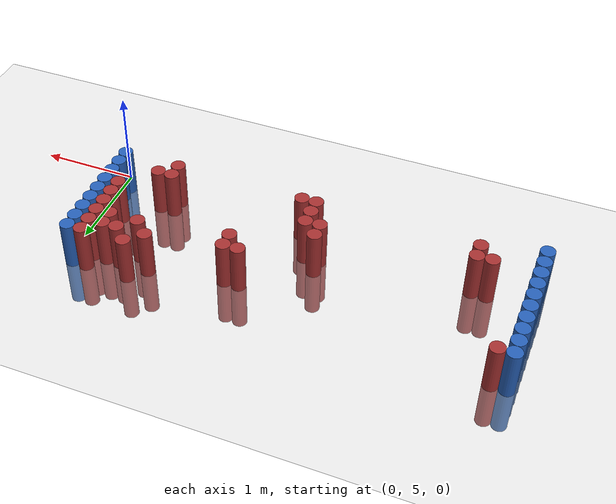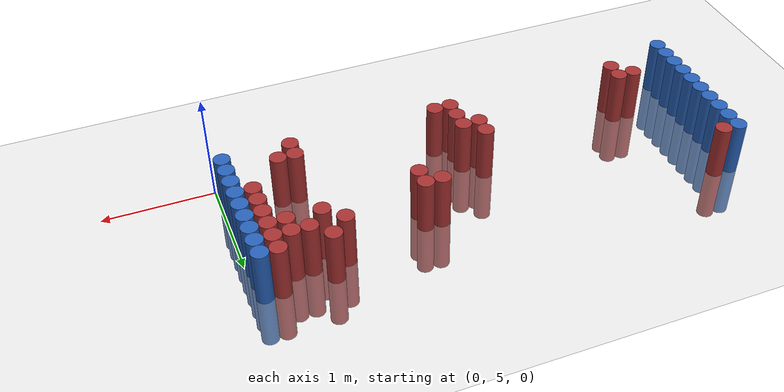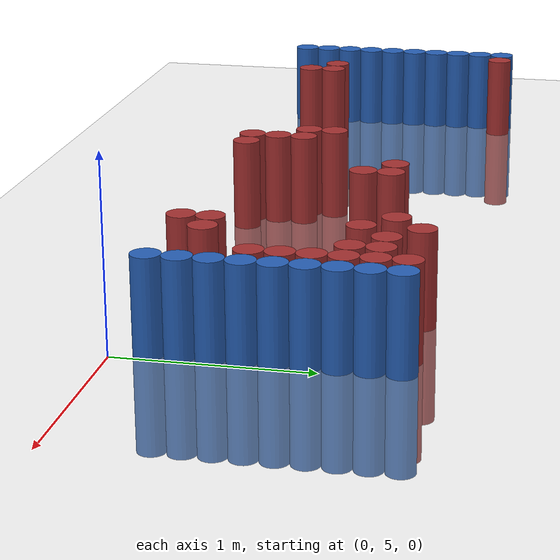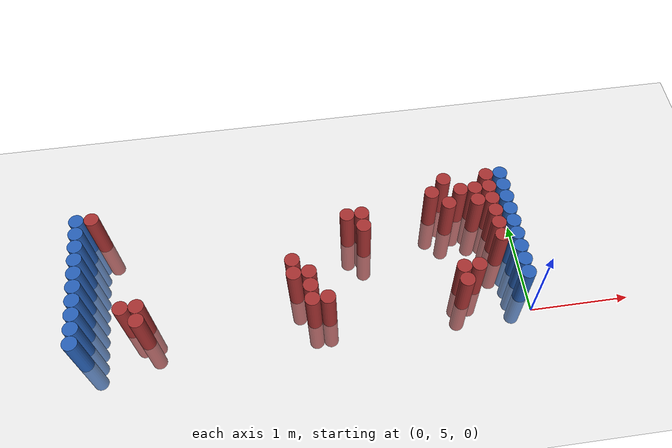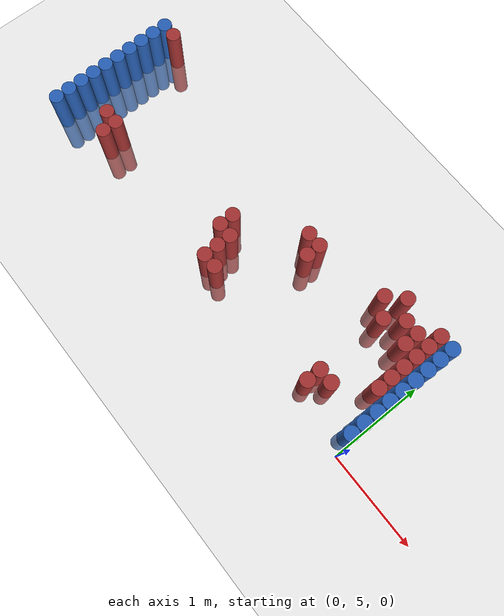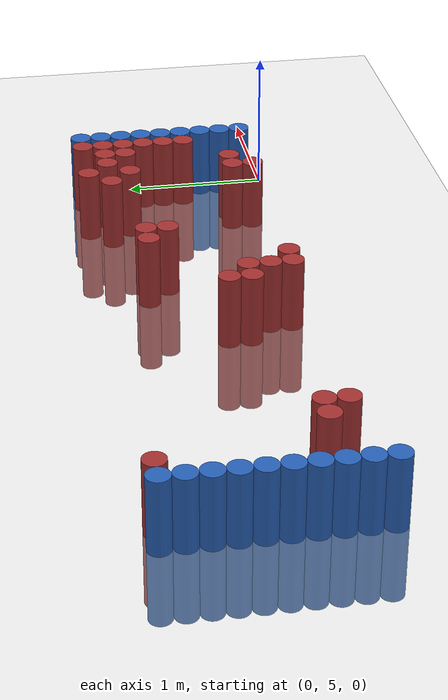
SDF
<sdf version="1.6">
 <world name="default">
  <model name="ground_plane">
   <static>1</static>
   <link name="link">
    <collision name="collision">
     <geometry><plane><normal>0 0 1</normal><size>100 100</size></plane></geometry>
     <surface><friction><ode><mu>100</mu><mu2>50</mu2></ode></friction></surface>
    </collision>
    <visual name="visual">
     <cast_shadows>0</cast_shadows>
     <geometry><plane><normal>0 0 1</normal><size>100 100</size></plane></geometry>
     <material>
      <script><uri>file://media/materials/scripts/gazebo.material</uri><name>Gazebo/Grey</name></script>
     </material>
    </visual>
   </link>
  </model>
  <model name="unit_cylinder_95">
   <static>1</static>
   <pose>-4.425000 5.025000 0.000000 0.000000 0.000000 0.000000</pose>
   <link name="link">
    <inertial>
     <mass>1</mass>
     <inertia><ixx>0.145833</ixx><ixy>0</ixy><ixz>0</ixz><iyy>0.145833</iyy><iyz>0</iyz><izz>0.125</izz></inertia>
    </inertial>
    <collision name="collision">
     <geometry><cylinder><radius>0.075000</radius><length>1</length></cylinder></geometry>
    </collision>
    <visual name="visual">
     <geometry><cylinder><radius>0.075000</radius><length>1</length></cylinder></geometry>
     <material>
      <ambient>0.152000 0.379000 0.720000 1</ambient>
      <diffuse>0.152000 0.379000 0.720000 1</diffuse>
     </material>
     <material>
      <script><name>Gazebo/Grey</name><uri>file://media/materials/scripts/gazebo.material</uri></script>
     </material>
    </visual>
   </link>
  </model>
  <model name="unit_cylinder_96">
   <static>1</static>
   <pose>-4.425000 5.175000 0.000000 0.000000 0.000000 0.000000</pose>
   <link name="link">
    <inertial>
     <mass>1</mass>
     <inertia><ixx>0.145833</ixx><ixy>0</ixy><ixz>0</ixz><iyy>0.145833</iyy><iyz>0</iyz><izz>0.125</izz></inertia>
    </inertial>
    <collision name="collision">
     <geometry><cylinder><radius>0.075000</radius><length>1</length></cylinder></geometry>
    </collision>
    <visual name="visual">
     <geometry><cylinder><radius>0.075000</radius><length>1</length></cylinder></geometry>
     <material>
      <ambient>0.152000 0.379000 0.720000 1</ambient>
      <diffuse>0.152000 0.379000 0.720000 1</diffuse>
     </material>
     <material>
      <script><name>Gazebo/Grey</name><uri>file://media/materials/scripts/gazebo.material</uri></script>
     </material>
    </visual>
   </link>
  </model>
  <model name="unit_cylinder_97">
   <static>1</static>
   <pose>-4.425000 5.325000 0.000000 0.000000 0.000000 0.000000</pose>
   <link name="link">
    <inertial>
     <mass>1</mass>
     <inertia><ixx>0.145833</ixx><ixy>0</ixy><ixz>0</ixz><iyy>0.145833</iyy><iyz>0</iyz><izz>0.125</izz></inertia>
    </inertial>
    <collision name="collision">
     <geometry><cylinder><radius>0.075000</radius><length>1</length></cylinder></geometry>
    </collision>
    <visual name="visual">
     <geometry><cylinder><radius>0.075000</radius><length>1</length></cylinder></geometry>
     <material>
      <ambient>0.152000 0.379000 0.720000 1</ambient>
      <diffuse>0.152000 0.379000 0.720000 1</diffuse>
     </material>
     <material>
      <script><name>Gazebo/Grey</name><uri>file://media/materials/scripts/gazebo.material</uri></script>
     </material>
    </visual>
   </link>
  </model>
  <model name="unit_cylinder_98">
   <static>1</static>
   <pose>-4.425000 5.475000 0.000000 0.000000 0.000000 0.000000</pose>
   <link name="link">
    <inertial>
     <mass>1</mass>
     <inertia><ixx>0.145833</ixx><ixy>0</ixy><ixz>0</ixz><iyy>0.145833</iyy><iyz>0</iyz><izz>0.125</izz></inertia>
    </inertial>
    <collision name="collision">
     <geometry><cylinder><radius>0.075000</radius><length>1</length></cylinder></geometry>
    </collision>
    <visual name="visual">
     <geometry><cylinder><radius>0.075000</radius><length>1</length></cylinder></geometry>
     <material>
      <ambient>0.152000 0.379000 0.720000 1</ambient>
      <diffuse>0.152000 0.379000 0.720000 1</diffuse>
     </material>
     <material>
      <script><name>Gazebo/Grey</name><uri>file://media/materials/scripts/gazebo.material</uri></script>
     </material>
    </visual>
   </link>
  </model>
  <model name="unit_cylinder_99">
   <static>1</static>
   <pose>-4.425000 5.625000 0.000000 0.000000 0.000000 0.000000</pose>
   <link name="link">
    <inertial>
     <mass>1</mass>
     <inertia><ixx>0.145833</ixx><ixy>0</ixy><ixz>0</ixz><iyy>0.145833</iyy><iyz>0</iyz><izz>0.125</izz></inertia>
    </inertial>
    <collision name="collision">
     <geometry><cylinder><radius>0.075000</radius><length>1</length></cylinder></geometry>
    </collision>
    <visual name="visual">
     <geometry><cylinder><radius>0.075000</radius><length>1</length></cylinder></geometry>
     <material>
      <ambient>0.152000 0.379000 0.720000 1</ambient>
      <diffuse>0.152000 0.379000 0.720000 1</diffuse>
     </material>
     <material>
      <script><name>Gazebo/Grey</name><uri>file://media/materials/scripts/gazebo.material</uri></script>
     </material>
    </visual>
   </link>
  </model>
  <model name="unit_cylinder_100">
   <static>1</static>
   <pose>-4.425000 5.775000 0.000000 0.000000 0.000000 0.000000</pose>
   <link name="link">
    <inertial>
     <mass>1</mass>
     <inertia><ixx>0.145833</ixx><ixy>0</ixy><ixz>0</ixz><iyy>0.145833</iyy><iyz>0</iyz><izz>0.125</izz></inertia>
    </inertial>
    <collision name="collision">
     <geometry><cylinder><radius>0.075000</radius><length>1</length></cylinder></geometry>
    </collision>
    <visual name="visual">
     <geometry><cylinder><radius>0.075000</radius><length>1</length></cylinder></geometry>
     <material>
      <ambient>0.152000 0.379000 0.720000 1</ambient>
      <diffuse>0.152000 0.379000 0.720000 1</diffuse>
     </material>
     <material>
      <script><name>Gazebo/Grey</name><uri>file://media/materials/scripts/gazebo.material</uri></script>
     </material>
    </visual>
   </link>
  </model>
  <model name="unit_cylinder_101">
   <static>1</static>
   <pose>-4.425000 5.925000 0.000000 0.000000 0.000000 0.000000</pose>
   <link name="link">
    <inertial>
     <mass>1</mass>
     <inertia><ixx>0.145833</ixx><ixy>0</ixy><ixz>0</ixz><iyy>0.145833</iyy><iyz>0</iyz><izz>0.125</izz></inertia>
    </inertial>
    <collision name="collision">
     <geometry><cylinder><radius>0.075000</radius><length>1</length></cylinder></geometry>
    </collision>
    <visual name="visual">
     <geometry><cylinder><radius>0.075000</radius><length>1</length></cylinder></geometry>
     <material>
      <ambient>0.152000 0.379000 0.720000 1</ambient>
      <diffuse>0.152000 0.379000 0.720000 1</diffuse>
     </material>
     <material>
      <script><name>Gazebo/Grey</name><uri>file://media/materials/scripts/gazebo.material</uri></script>
     </material>
    </visual>
   </link>
  </model>
  <model name="unit_cylinder_102">
   <static>1</static>
   <pose>-4.425000 6.075000 0.000000 0.000000 0.000000 0.000000</pose>
   <link name="link">
    <inertial>
     <mass>1</mass>
     <inertia><ixx>0.145833</ixx><ixy>0</ixy><ixz>0</ixz><iyy>0.145833</iyy><iyz>0</iyz><izz>0.125</izz></inertia>
    </inertial>
    <collision name="collision">
     <geometry><cylinder><radius>0.075000</radius><length>1</length></cylinder></geometry>
    </collision>
    <visual name="visual">
     <geometry><cylinder><radius>0.075000</radius><length>1</length></cylinder></geometry>
     <material>
      <ambient>0.152000 0.379000 0.720000 1</ambient>
      <diffuse>0.152000 0.379000 0.720000 1</diffuse>
     </material>
     <material>
      <script><name>Gazebo/Grey</name><uri>file://media/materials/scripts/gazebo.material</uri></script>
     </material>
    </visual>
   </link>
  </model>
  <model name="unit_cylinder_103">
   <static>1</static>
   <pose>-4.425000 6.225000 0.000000 0.000000 0.000000 0.000000</pose>
   <link name="link">
    <inertial>
     <mass>1</mass>
     <inertia><ixx>0.145833</ixx><ixy>0</ixy><ixz>0</ixz><iyy>0.145833</iyy><iyz>0</iyz><izz>0.125</izz></inertia>
    </inertial>
    <collision name="collision">
     <geometry><cylinder><radius>0.075000</radius><length>1</length></cylinder></geometry>
    </collision>
    <visual name="visual">
     <geometry><cylinder><radius>0.075000</radius><length>1</length></cylinder></geometry>
     <material>
      <ambient>0.152000 0.379000 0.720000 1</ambient>
      <diffuse>0.152000 0.379000 0.720000 1</diffuse>
     </material>
     <material>
      <script><name>Gazebo/Grey</name><uri>file://media/materials/scripts/gazebo.material</uri></script>
     </material>
    </visual>
   </link>
  </model>
  <model name="unit_cylinder_104">
   <static>1</static>
   <pose>-4.425000 6.375000 0.000000 0.000000 0.000000 0.000000</pose>
   <link name="link">
    <inertial>
     <mass>1</mass>
     <inertia><ixx>0.145833</ixx><ixy>0</ixy><ixz>0</ixz><iyy>0.145833</iyy><iyz>0</iyz><izz>0.125</izz></inertia>
    </inertial>
    <collision name="collision">
     <geometry><cylinder><radius>0.075000</radius><length>1</length></cylinder></geometry>
    </collision>
    <visual name="visual">
     <geometry><cylinder><radius>0.075000</radius><length>1</length></cylinder></geometry>
     <material>
      <ambient>0.152000 0.379000 0.720000 1</ambient>
      <diffuse>0.152000 0.379000 0.720000 1</diffuse>
     </material>
     <material>
      <script><name>Gazebo/Grey</name><uri>file://media/materials/scripts/gazebo.material</uri></script>
     </material>
    </visual>
   </link>
  </model>
  <model name="unit_cylinder_126">
   <static>1</static>
   <pose>-4.275000 6.375000 0.000000 0.000000 0.000000 0.000000</pose>
   <link name="link">
    <inertial>
     <mass>1</mass>
     <inertia><ixx>0.145833</ixx><ixy>0</ixy><ixz>0</ixz><iyy>0.145833</iyy><iyz>0</iyz><izz>0.125</izz></inertia>
    </inertial>
    <collision name="collision">
     <geometry><cylinder><radius>0.075000</radius><length>1</length></cylinder></geometry>
    </collision>
    <visual name="visual">
     <geometry><cylinder><radius>0.075000</radius><length>1</length></cylinder></geometry>
     <material>
      <ambient>0.648000 0.192000 0.192000 1</ambient>
      <diffuse>0.648000 0.192000 0.192000 1</diffuse>
     </material>
     <material>
      <script><name>Gazebo/Grey</name><uri>file://media/materials/scripts/gazebo.material</uri></script>
     </material>
    </visual>
   </link>
  </model>
  <model name="unit_cylinder_132">
   <static>1</static>
   <pose>-3.975000 5.325000 0.000000 0.000000 0.000000 0.000000</pose>
   <link name="link">
    <inertial>
     <mass>1</mass>
     <inertia><ixx>0.145833</ixx><ixy>0</ixy><ixz>0</ixz><iyy>0.145833</iyy><iyz>0</iyz><izz>0.125</izz></inertia>
    </inertial>
    <collision name="collision">
     <geometry><cylinder><radius>0.075000</radius><length>1</length></cylinder></geometry>
    </collision>
    <visual name="visual">
     <geometry><cylinder><radius>0.075000</radius><length>1</length></cylinder></geometry>
     <material>
      <ambient>0.648000 0.192000 0.192000 1</ambient>
      <diffuse>0.648000 0.192000 0.192000 1</diffuse>
     </material>
     <material>
      <script><name>Gazebo/Grey</name><uri>file://media/materials/scripts/gazebo.material</uri></script>
     </material>
    </visual>
   </link>
  </model>
  <model name="unit_cylinder_133">
   <static>1</static>
   <pose>-3.825000 5.175000 0.000000 0.000000 0.000000 0.000000</pose>
   <link name="link">
    <inertial>
     <mass>1</mass>
     <inertia><ixx>0.145833</ixx><ixy>0</ixy><ixz>0</ixz><iyy>0.145833</iyy><iyz>0</iyz><izz>0.125</izz></inertia>
    </inertial>
    <collision name="collision">
     <geometry><cylinder><radius>0.075000</radius><length>1</length></cylinder></geometry>
    </collision>
    <visual name="visual">
     <geometry><cylinder><radius>0.075000</radius><length>1</length></cylinder></geometry>
     <material>
      <ambient>0.648000 0.192000 0.192000 1</ambient>
      <diffuse>0.648000 0.192000 0.192000 1</diffuse>
     </material>
     <material>
      <script><name>Gazebo/Grey</name><uri>file://media/materials/scripts/gazebo.material</uri></script>
     </material>
    </visual>
   </link>
  </model>
  <model name="unit_cylinder_134">
   <static>1</static>
   <pose>-3.825000 5.325000 0.000000 0.000000 0.000000 0.000000</pose>
   <link name="link">
    <inertial>
     <mass>1</mass>
     <inertia><ixx>0.145833</ixx><ixy>0</ixy><ixz>0</ixz><iyy>0.145833</iyy><iyz>0</iyz><izz>0.125</izz></inertia>
    </inertial>
    <collision name="collision">
     <geometry><cylinder><radius>0.075000</radius><length>1</length></cylinder></geometry>
    </collision>
    <visual name="visual">
     <geometry><cylinder><radius>0.075000</radius><length>1</length></cylinder></geometry>
     <material>
      <ambient>0.648000 0.192000 0.192000 1</ambient>
      <diffuse>0.648000 0.192000 0.192000 1</diffuse>
     </material>
     <material>
      <script><name>Gazebo/Grey</name><uri>file://media/materials/scripts/gazebo.material</uri></script>
     </material>
    </visual>
   </link>
  </model>
  <model name="unit_cylinder_141">
   <static>1</static>
   <pose>-2.325000 5.475000 0.000000 0.000000 0.000000 0.000000</pose>
   <link name="link">
    <inertial>
     <mass>1</mass>
     <inertia><ixx>0.145833</ixx><ixy>0</ixy><ixz>0</ixz><iyy>0.145833</iyy><iyz>0</iyz><izz>0.125</izz></inertia>
    </inertial>
    <collision name="collision">
     <geometry><cylinder><radius>0.075000</radius><length>1</length></cylinder></geometry>
    </collision>
    <visual name="visual">
     <geometry><cylinder><radius>0.075000</radius><length>1</length></cylinder></geometry>
     <material>
      <ambient>0.648000 0.192000 0.192000 1</ambient>
      <diffuse>0.648000 0.192000 0.192000 1</diffuse>
     </material>
     <material>
      <script><name>Gazebo/Grey</name><uri>file://media/materials/scripts/gazebo.material</uri></script>
     </material>
    </visual>
   </link>
  </model>
  <model name="unit_cylinder_142">
   <static>1</static>
   <pose>-2.325000 5.625000 0.000000 0.000000 0.000000 0.000000</pose>
   <link name="link">
    <inertial>
     <mass>1</mass>
     <inertia><ixx>0.145833</ixx><ixy>0</ixy><ixz>0</ixz><iyy>0.145833</iyy><iyz>0</iyz><izz>0.125</izz></inertia>
    </inertial>
    <collision name="collision">
     <geometry><cylinder><radius>0.075000</radius><length>1</length></cylinder></geometry>
    </collision>
    <visual name="visual">
     <geometry><cylinder><radius>0.075000</radius><length>1</length></cylinder></geometry>
     <material>
      <ambient>0.648000 0.192000 0.192000 1</ambient>
      <diffuse>0.648000 0.192000 0.192000 1</diffuse>
     </material>
     <material>
      <script><name>Gazebo/Grey</name><uri>file://media/materials/scripts/gazebo.material</uri></script>
     </material>
    </visual>
   </link>
  </model>
  <model name="unit_cylinder_143">
   <static>1</static>
   <pose>-2.175000 5.175000 0.000000 0.000000 0.000000 0.000000</pose>
   <link name="link">
    <inertial>
     <mass>1</mass>
     <inertia><ixx>0.145833</ixx><ixy>0</ixy><ixz>0</ixz><iyy>0.145833</iyy><iyz>0</iyz><izz>0.125</izz></inertia>
    </inertial>
    <collision name="collision">
     <geometry><cylinder><radius>0.075000</radius><length>1</length></cylinder></geometry>
    </collision>
    <visual name="visual">
     <geometry><cylinder><radius>0.075000</radius><length>1</length></cylinder></geometry>
     <material>
      <ambient>0.648000 0.192000 0.192000 1</ambient>
      <diffuse>0.648000 0.192000 0.192000 1</diffuse>
     </material>
     <material>
      <script><name>Gazebo/Grey</name><uri>file://media/materials/scripts/gazebo.material</uri></script>
     </material>
    </visual>
   </link>
  </model>
  <model name="unit_cylinder_144">
   <static>1</static>
   <pose>-2.175000 5.325000 0.000000 0.000000 0.000000 0.000000</pose>
   <link name="link">
    <inertial>
     <mass>1</mass>
     <inertia><ixx>0.145833</ixx><ixy>0</ixy><ixz>0</ixz><iyy>0.145833</iyy><iyz>0</iyz><izz>0.125</izz></inertia>
    </inertial>
    <collision name="collision">
     <geometry><cylinder><radius>0.075000</radius><length>1</length></cylinder></geometry>
    </collision>
    <visual name="visual">
     <geometry><cylinder><radius>0.075000</radius><length>1</length></cylinder></geometry>
     <material>
      <ambient>0.648000 0.192000 0.192000 1</ambient>
      <diffuse>0.648000 0.192000 0.192000 1</diffuse>
     </material>
     <material>
      <script><name>Gazebo/Grey</name><uri>file://media/materials/scripts/gazebo.material</uri></script>
     </material>
    </visual>
   </link>
  </model>
  <model name="unit_cylinder_145">
   <static>1</static>
   <pose>-2.175000 5.475000 0.000000 0.000000 0.000000 0.000000</pose>
   <link name="link">
    <inertial>
     <mass>1</mass>
     <inertia><ixx>0.145833</ixx><ixy>0</ixy><ixz>0</ixz><iyy>0.145833</iyy><iyz>0</iyz><izz>0.125</izz></inertia>
    </inertial>
    <collision name="collision">
     <geometry><cylinder><radius>0.075000</radius><length>1</length></cylinder></geometry>
    </collision>
    <visual name="visual">
     <geometry><cylinder><radius>0.075000</radius><length>1</length></cylinder></geometry>
     <material>
      <ambient>0.648000 0.192000 0.192000 1</ambient>
      <diffuse>0.648000 0.192000 0.192000 1</diffuse>
     </material>
     <material>
      <script><name>Gazebo/Grey</name><uri>file://media/materials/scripts/gazebo.material</uri></script>
     </material>
    </visual>
   </link>
  </model>
  <model name="unit_cylinder_146">
   <static>1</static>
   <pose>-2.025000 5.175000 0.000000 0.000000 0.000000 0.000000</pose>
   <link name="link">
    <inertial>
     <mass>1</mass>
     <inertia><ixx>0.145833</ixx><ixy>0</ixy><ixz>0</ixz><iyy>0.145833</iyy><iyz>0</iyz><izz>0.125</izz></inertia>
    </inertial>
    <collision name="collision">
     <geometry><cylinder><radius>0.075000</radius><length>1</length></cylinder></geometry>
    </collision>
    <visual name="visual">
     <geometry><cylinder><radius>0.075000</radius><length>1</length></cylinder></geometry>
     <material>
      <ambient>0.648000 0.192000 0.192000 1</ambient>
      <diffuse>0.648000 0.192000 0.192000 1</diffuse>
     </material>
     <material>
      <script><name>Gazebo/Grey</name><uri>file://media/materials/scripts/gazebo.material</uri></script>
     </material>
    </visual>
   </link>
  </model>
  <model name="unit_cylinder_152">
   <static>1</static>
   <pose>-1.725000 6.075000 0.000000 0.000000 0.000000 0.000000</pose>
   <link name="link">
    <inertial>
     <mass>1</mass>
     <inertia><ixx>0.145833</ixx><ixy>0</ixy><ixz>0</ixz><iyy>0.145833</iyy><iyz>0</iyz><izz>0.125</izz></inertia>
    </inertial>
    <collision name="collision">
     <geometry><cylinder><radius>0.075000</radius><length>1</length></cylinder></geometry>
    </collision>
    <visual name="visual">
     <geometry><cylinder><radius>0.075000</radius><length>1</length></cylinder></geometry>
     <material>
      <ambient>0.648000 0.192000 0.192000 1</ambient>
      <diffuse>0.648000 0.192000 0.192000 1</diffuse>
     </material>
     <material>
      <script><name>Gazebo/Grey</name><uri>file://media/materials/scripts/gazebo.material</uri></script>
     </material>
    </visual>
   </link>
  </model>
  <model name="unit_cylinder_156">
   <static>1</static>
   <pose>-1.575000 5.925000 0.000000 0.000000 0.000000 0.000000</pose>
   <link name="link">
    <inertial>
     <mass>1</mass>
     <inertia><ixx>0.145833</ixx><ixy>0</ixy><ixz>0</ixz><iyy>0.145833</iyy><iyz>0</iyz><izz>0.125</izz></inertia>
    </inertial>
    <collision name="collision">
     <geometry><cylinder><radius>0.075000</radius><length>1</length></cylinder></geometry>
    </collision>
    <visual name="visual">
     <geometry><cylinder><radius>0.075000</radius><length>1</length></cylinder></geometry>
     <material>
      <ambient>0.648000 0.192000 0.192000 1</ambient>
      <diffuse>0.648000 0.192000 0.192000 1</diffuse>
     </material>
     <material>
      <script><name>Gazebo/Grey</name><uri>file://media/materials/scripts/gazebo.material</uri></script>
     </material>
    </visual>
   </link>
  </model>
  <model name="unit_cylinder_157">
   <static>1</static>
   <pose>-1.575000 6.075000 0.000000 0.000000 0.000000 0.000000</pose>
   <link name="link">
    <inertial>
     <mass>1</mass>
     <inertia><ixx>0.145833</ixx><ixy>0</ixy><ixz>0</ixz><iyy>0.145833</iyy><iyz>0</iyz><izz>0.125</izz></inertia>
    </inertial>
    <collision name="collision">
     <geometry><cylinder><radius>0.075000</radius><length>1</length></cylinder></geometry>
    </collision>
    <visual name="visual">
     <geometry><cylinder><radius>0.075000</radius><length>1</length></cylinder></geometry>
     <material>
      <ambient>0.648000 0.192000 0.192000 1</ambient>
      <diffuse>0.648000 0.192000 0.192000 1</diffuse>
     </material>
     <material>
      <script><name>Gazebo/Grey</name><uri>file://media/materials/scripts/gazebo.material</uri></script>
     </material>
    </visual>
   </link>
  </model>
  <model name="unit_cylinder_174">
   <static>1</static>
   <pose>-0.825000 6.225000 0.000000 0.000000 0.000000 0.000000</pose>
   <link name="link">
    <inertial>
     <mass>1</mass>
     <inertia><ixx>0.145833</ixx><ixy>0</ixy><ixz>0</ixz><iyy>0.145833</iyy><iyz>0</iyz><izz>0.125</izz></inertia>
    </inertial>
    <collision name="collision">
     <geometry><cylinder><radius>0.075000</radius><length>1</length></cylinder></geometry>
    </collision>
    <visual name="visual">
     <geometry><cylinder><radius>0.075000</radius><length>1</length></cylinder></geometry>
     <material>
      <ambient>0.648000 0.192000 0.192000 1</ambient>
      <diffuse>0.648000 0.192000 0.192000 1</diffuse>
     </material>
     <material>
      <script><name>Gazebo/Grey</name><uri>file://media/materials/scripts/gazebo.material</uri></script>
     </material>
    </visual>
   </link>
  </model>
  <model name="unit_cylinder_177">
   <static>1</static>
   <pose>-0.675000 5.175000 0.000000 0.000000 0.000000 0.000000</pose>
   <link name="link">
    <inertial>
     <mass>1</mass>
     <inertia><ixx>0.145833</ixx><ixy>0</ixy><ixz>0</ixz><iyy>0.145833</iyy><iyz>0</iyz><izz>0.125</izz></inertia>
    </inertial>
    <collision name="collision">
     <geometry><cylinder><radius>0.075000</radius><length>1</length></cylinder></geometry>
    </collision>
    <visual name="visual">
     <geometry><cylinder><radius>0.075000</radius><length>1</length></cylinder></geometry>
     <material>
      <ambient>0.648000 0.192000 0.192000 1</ambient>
      <diffuse>0.648000 0.192000 0.192000 1</diffuse>
     </material>
     <material>
      <script><name>Gazebo/Grey</name><uri>file://media/materials/scripts/gazebo.material</uri></script>
     </material>
    </visual>
   </link>
  </model>
  <model name="unit_cylinder_178">
   <static>1</static>
   <pose>-0.675000 5.325000 0.000000 0.000000 0.000000 0.000000</pose>
   <link name="link">
    <inertial>
     <mass>1</mass>
     <inertia><ixx>0.145833</ixx><ixy>0</ixy><ixz>0</ixz><iyy>0.145833</iyy><iyz>0</iyz><izz>0.125</izz></inertia>
    </inertial>
    <collision name="collision">
     <geometry><cylinder><radius>0.075000</radius><length>1</length></cylinder></geometry>
    </collision>
    <visual name="visual">
     <geometry><cylinder><radius>0.075000</radius><length>1</length></cylinder></geometry>
     <material>
      <ambient>0.648000 0.192000 0.192000 1</ambient>
      <diffuse>0.648000 0.192000 0.192000 1</diffuse>
     </material>
     <material>
      <script><name>Gazebo/Grey</name><uri>file://media/materials/scripts/gazebo.material</uri></script>
     </material>
    </visual>
   </link>
  </model>
  <model name="unit_cylinder_179">
   <static>1</static>
   <pose>-0.675000 6.075000 0.000000 0.000000 0.000000 0.000000</pose>
   <link name="link">
    <inertial>
     <mass>1</mass>
     <inertia><ixx>0.145833</ixx><ixy>0</ixy><ixz>0</ixz><iyy>0.145833</iyy><iyz>0</iyz><izz>0.125</izz></inertia>
    </inertial>
    <collision name="collision">
     <geometry><cylinder><radius>0.075000</radius><length>1</length></cylinder></geometry>
    </collision>
    <visual name="visual">
     <geometry><cylinder><radius>0.075000</radius><length>1</length></cylinder></geometry>
     <material>
      <ambient>0.648000 0.192000 0.192000 1</ambient>
      <diffuse>0.648000 0.192000 0.192000 1</diffuse>
     </material>
     <material>
      <script><name>Gazebo/Grey</name><uri>file://media/materials/scripts/gazebo.material</uri></script>
     </material>
    </visual>
   </link>
  </model>
  <model name="unit_cylinder_180">
   <static>1</static>
   <pose>-0.675000 6.375000 0.000000 0.000000 0.000000 0.000000</pose>
   <link name="link">
    <inertial>
     <mass>1</mass>
     <inertia><ixx>0.145833</ixx><ixy>0</ixy><ixz>0</ixz><iyy>0.145833</iyy><iyz>0</iyz><izz>0.125</izz></inertia>
    </inertial>
    <collision name="collision">
     <geometry><cylinder><radius>0.075000</radius><length>1</length></cylinder></geometry>
    </collision>
    <visual name="visual">
     <geometry><cylinder><radius>0.075000</radius><length>1</length></cylinder></geometry>
     <material>
      <ambient>0.648000 0.192000 0.192000 1</ambient>
      <diffuse>0.648000 0.192000 0.192000 1</diffuse>
     </material>
     <material>
      <script><name>Gazebo/Grey</name><uri>file://media/materials/scripts/gazebo.material</uri></script>
     </material>
    </visual>
   </link>
  </model>
  <model name="unit_cylinder_183">
   <static>1</static>
   <pose>-0.525000 5.325000 0.000000 0.000000 0.000000 0.000000</pose>
   <link name="link">
    <inertial>
     <mass>1</mass>
     <inertia><ixx>0.145833</ixx><ixy>0</ixy><ixz>0</ixz><iyy>0.145833</iyy><iyz>0</iyz><izz>0.125</izz></inertia>
    </inertial>
    <collision name="collision">
     <geometry><cylinder><radius>0.075000</radius><length>1</length></cylinder></geometry>
    </collision>
    <visual name="visual">
     <geometry><cylinder><radius>0.075000</radius><length>1</length></cylinder></geometry>
     <material>
      <ambient>0.648000 0.192000 0.192000 1</ambient>
      <diffuse>0.648000 0.192000 0.192000 1</diffuse>
     </material>
     <material>
      <script><name>Gazebo/Grey</name><uri>file://media/materials/scripts/gazebo.material</uri></script>
     </material>
    </visual>
   </link>
  </model>
  <model name="unit_cylinder_184">
   <static>1</static>
   <pose>-0.525000 6.225000 0.000000 0.000000 0.000000 0.000000</pose>
   <link name="link">
    <inertial>
     <mass>1</mass>
     <inertia><ixx>0.145833</ixx><ixy>0</ixy><ixz>0</ixz><iyy>0.145833</iyy><iyz>0</iyz><izz>0.125</izz></inertia>
    </inertial>
    <collision name="collision">
     <geometry><cylinder><radius>0.075000</radius><length>1</length></cylinder></geometry>
    </collision>
    <visual name="visual">
     <geometry><cylinder><radius>0.075000</radius><length>1</length></cylinder></geometry>
     <material>
      <ambient>0.648000 0.192000 0.192000 1</ambient>
      <diffuse>0.648000 0.192000 0.192000 1</diffuse>
     </material>
     <material>
      <script><name>Gazebo/Grey</name><uri>file://media/materials/scripts/gazebo.material</uri></script>
     </material>
    </visual>
   </link>
  </model>
  <model name="unit_cylinder_186">
   <static>1</static>
   <pose>-0.375000 6.075000 0.000000 0.000000 0.000000 0.000000</pose>
   <link name="link">
    <inertial>
     <mass>1</mass>
     <inertia><ixx>0.145833</ixx><ixy>0</ixy><ixz>0</ixz><iyy>0.145833</iyy><iyz>0</iyz><izz>0.125</izz></inertia>
    </inertial>
    <collision name="collision">
     <geometry><cylinder><radius>0.075000</radius><length>1</length></cylinder></geometry>
    </collision>
    <visual name="visual">
     <geometry><cylinder><radius>0.075000</radius><length>1</length></cylinder></geometry>
     <material>
      <ambient>0.648000 0.192000 0.192000 1</ambient>
      <diffuse>0.648000 0.192000 0.192000 1</diffuse>
     </material>
     <material>
      <script><name>Gazebo/Grey</name><uri>file://media/materials/scripts/gazebo.material</uri></script>
     </material>
    </visual>
   </link>
  </model>
  <model name="unit_cylinder_187">
   <static>1</static>
   <pose>-0.375000 6.225000 0.000000 0.000000 0.000000 0.000000</pose>
   <link name="link">
    <inertial>
     <mass>1</mass>
     <inertia><ixx>0.145833</ixx><ixy>0</ixy><ixz>0</ixz><iyy>0.145833</iyy><iyz>0</iyz><izz>0.125</izz></inertia>
    </inertial>
    <collision name="collision">
     <geometry><cylinder><radius>0.075000</radius><length>1</length></cylinder></geometry>
    </collision>
    <visual name="visual">
     <geometry><cylinder><radius>0.075000</radius><length>1</length></cylinder></geometry>
     <material>
      <ambient>0.648000 0.192000 0.192000 1</ambient>
      <diffuse>0.648000 0.192000 0.192000 1</diffuse>
     </material>
     <material>
      <script><name>Gazebo/Grey</name><uri>file://media/materials/scripts/gazebo.material</uri></script>
     </material>
    </visual>
   </link>
  </model>
  <model name="unit_cylinder_189">
   <static>1</static>
   <pose>-0.225000 5.625000 0.000000 0.000000 0.000000 0.000000</pose>
   <link name="link">
    <inertial>
     <mass>1</mass>
     <inertia><ixx>0.145833</ixx><ixy>0</ixy><ixz>0</ixz><iyy>0.145833</iyy><iyz>0</iyz><izz>0.125</izz></inertia>
    </inertial>
    <collision name="collision">
     <geometry><cylinder><radius>0.075000</radius><length>1</length></cylinder></geometry>
    </collision>
    <visual name="visual">
     <geometry><cylinder><radius>0.075000</radius><length>1</length></cylinder></geometry>
     <material>
      <ambient>0.648000 0.192000 0.192000 1</ambient>
      <diffuse>0.648000 0.192000 0.192000 1</diffuse>
     </material>
     <material>
      <script><name>Gazebo/Grey</name><uri>file://media/materials/scripts/gazebo.material</uri></script>
     </material>
    </visual>
   </link>
  </model>
  <model name="unit_cylinder_190">
   <static>1</static>
   <pose>-0.225000 5.775000 0.000000 0.000000 0.000000 0.000000</pose>
   <link name="link">
    <inertial>
     <mass>1</mass>
     <inertia><ixx>0.145833</ixx><ixy>0</ixy><ixz>0</ixz><iyy>0.145833</iyy><iyz>0</iyz><izz>0.125</izz></inertia>
    </inertial>
    <collision name="collision">
     <geometry><cylinder><radius>0.075000</radius><length>1</length></cylinder></geometry>
    </collision>
    <visual name="visual">
     <geometry><cylinder><radius>0.075000</radius><length>1</length></cylinder></geometry>
     <material>
      <ambient>0.648000 0.192000 0.192000 1</ambient>
      <diffuse>0.648000 0.192000 0.192000 1</diffuse>
     </material>
     <material>
      <script><name>Gazebo/Grey</name><uri>file://media/materials/scripts/gazebo.material</uri></script>
     </material>
    </visual>
   </link>
  </model>
  <model name="unit_cylinder_191">
   <static>1</static>
   <pose>-0.225000 5.925000 0.000000 0.000000 0.000000 0.000000</pose>
   <link name="link">
    <inertial>
     <mass>1</mass>
     <inertia><ixx>0.145833</ixx><ixy>0</ixy><ixz>0</ixz><iyy>0.145833</iyy><iyz>0</iyz><izz>0.125</izz></inertia>
    </inertial>
    <collision name="collision">
     <geometry><cylinder><radius>0.075000</radius><length>1</length></cylinder></geometry>
    </collision>
    <visual name="visual">
     <geometry><cylinder><radius>0.075000</radius><length>1</length></cylinder></geometry>
     <material>
      <ambient>0.648000 0.192000 0.192000 1</ambient>
      <diffuse>0.648000 0.192000 0.192000 1</diffuse>
     </material>
     <material>
      <script><name>Gazebo/Grey</name><uri>file://media/materials/scripts/gazebo.material</uri></script>
     </material>
    </visual>
   </link>
  </model>
  <model name="unit_cylinder_192">
   <static>1</static>
   <pose>-0.225000 6.075000 0.000000 0.000000 0.000000 0.000000</pose>
   <link name="link">
    <inertial>
     <mass>1</mass>
     <inertia><ixx>0.145833</ixx><ixy>0</ixy><ixz>0</ixz><iyy>0.145833</iyy><iyz>0</iyz><izz>0.125</izz></inertia>
    </inertial>
    <collision name="collision">
     <geometry><cylinder><radius>0.075000</radius><length>1</length></cylinder></geometry>
    </collision>
    <visual name="visual">
     <geometry><cylinder><radius>0.075000</radius><length>1</length></cylinder></geometry>
     <material>
      <ambient>0.648000 0.192000 0.192000 1</ambient>
      <diffuse>0.648000 0.192000 0.192000 1</diffuse>
     </material>
     <material>
      <script><name>Gazebo/Grey</name><uri>file://media/materials/scripts/gazebo.material</uri></script>
     </material>
    </visual>
   </link>
  </model>
  <model name="unit_cylinder_193">
   <static>1</static>
   <pose>-0.225000 6.225000 0.000000 0.000000 0.000000 0.000000</pose>
   <link name="link">
    <inertial>
     <mass>1</mass>
     <inertia><ixx>0.145833</ixx><ixy>0</ixy><ixz>0</ixz><iyy>0.145833</iyy><iyz>0</iyz><izz>0.125</izz></inertia>
    </inertial>
    <collision name="collision">
     <geometry><cylinder><radius>0.075000</radius><length>1</length></cylinder></geometry>
    </collision>
    <visual name="visual">
     <geometry><cylinder><radius>0.075000</radius><length>1</length></cylinder></geometry>
     <material>
      <ambient>0.648000 0.192000 0.192000 1</ambient>
      <diffuse>0.648000 0.192000 0.192000 1</diffuse>
     </material>
     <material>
      <script><name>Gazebo/Grey</name><uri>file://media/materials/scripts/gazebo.material</uri></script>
     </material>
    </visual>
   </link>
  </model>
  <model name="unit_cylinder_194">
   <static>1</static>
   <pose>-0.225000 6.375000 0.000000 0.000000 0.000000 0.000000</pose>
   <link name="link">
    <inertial>
     <mass>1</mass>
     <inertia><ixx>0.145833</ixx><ixy>0</ixy><ixz>0</ixz><iyy>0.145833</iyy><iyz>0</iyz><izz>0.125</izz></inertia>
    </inertial>
    <collision name="collision">
     <geometry><cylinder><radius>0.075000</radius><length>1</length></cylinder></geometry>
    </collision>
    <visual name="visual">
     <geometry><cylinder><radius>0.075000</radius><length>1</length></cylinder></geometry>
     <material>
      <ambient>0.648000 0.192000 0.192000 1</ambient>
      <diffuse>0.648000 0.192000 0.192000 1</diffuse>
     </material>
     <material>
      <script><name>Gazebo/Grey</name><uri>file://media/materials/scripts/gazebo.material</uri></script>
     </material>
    </visual>
   </link>
  </model>
  <model name="unit_cylinder_206">
   <static>1</static>
   <pose>-0.075000 5.175000 0.000000 0.000000 0.000000 0.000000</pose>
   <link name="link">
    <inertial>
     <mass>1</mass>
     <inertia><ixx>0.145833</ixx><ixy>0</ixy><ixz>0</ixz><iyy>0.145833</iyy><iyz>0</iyz><izz>0.125</izz></inertia>
    </inertial>
    <collision name="collision">
     <geometry><cylinder><radius>0.075000</radius><length>1</length></cylinder></geometry>
    </collision>
    <visual name="visual">
     <geometry><cylinder><radius>0.075000</radius><length>1</length></cylinder></geometry>
     <material>
      <ambient>0.152000 0.379000 0.720000 1</ambient>
      <diffuse>0.152000 0.379000 0.720000 1</diffuse>
     </material>
     <material>
      <script><name>Gazebo/Grey</name><uri>file://media/materials/scripts/gazebo.material</uri></script>
     </material>
    </visual>
   </link>
  </model>
  <model name="unit_cylinder_207">
   <static>1</static>
   <pose>-0.075000 5.325000 0.000000 0.000000 0.000000 0.000000</pose>
   <link name="link">
    <inertial>
     <mass>1</mass>
     <inertia><ixx>0.145833</ixx><ixy>0</ixy><ixz>0</ixz><iyy>0.145833</iyy><iyz>0</iyz><izz>0.125</izz></inertia>
    </inertial>
    <collision name="collision">
     <geometry><cylinder><radius>0.075000</radius><length>1</length></cylinder></geometry>
    </collision>
    <visual name="visual">
     <geometry><cylinder><radius>0.075000</radius><length>1</length></cylinder></geometry>
     <material>
      <ambient>0.152000 0.379000 0.720000 1</ambient>
      <diffuse>0.152000 0.379000 0.720000 1</diffuse>
     </material>
     <material>
      <script><name>Gazebo/Grey</name><uri>file://media/materials/scripts/gazebo.material</uri></script>
     </material>
    </visual>
   </link>
  </model>
  <model name="unit_cylinder_208">
   <static>1</static>
   <pose>-0.075000 5.475000 0.000000 0.000000 0.000000 0.000000</pose>
   <link name="link">
    <inertial>
     <mass>1</mass>
     <inertia><ixx>0.145833</ixx><ixy>0</ixy><ixz>0</ixz><iyy>0.145833</iyy><iyz>0</iyz><izz>0.125</izz></inertia>
    </inertial>
    <collision name="collision">
     <geometry><cylinder><radius>0.075000</radius><length>1</length></cylinder></geometry>
    </collision>
    <visual name="visual">
     <geometry><cylinder><radius>0.075000</radius><length>1</length></cylinder></geometry>
     <material>
      <ambient>0.152000 0.379000 0.720000 1</ambient>
      <diffuse>0.152000 0.379000 0.720000 1</diffuse>
     </material>
     <material>
      <script><name>Gazebo/Grey</name><uri>file://media/materials/scripts/gazebo.material</uri></script>
     </material>
    </visual>
   </link>
  </model>
  <model name="unit_cylinder_209">
   <static>1</static>
   <pose>-0.075000 5.625000 0.000000 0.000000 0.000000 0.000000</pose>
   <link name="link">
    <inertial>
     <mass>1</mass>
     <inertia><ixx>0.145833</ixx><ixy>0</ixy><ixz>0</ixz><iyy>0.145833</iyy><iyz>0</iyz><izz>0.125</izz></inertia>
    </inertial>
    <collision name="collision">
     <geometry><cylinder><radius>0.075000</radius><length>1</length></cylinder></geometry>
    </collision>
    <visual name="visual">
     <geometry><cylinder><radius>0.075000</radius><length>1</length></cylinder></geometry>
     <material>
      <ambient>0.152000 0.379000 0.720000 1</ambient>
      <diffuse>0.152000 0.379000 0.720000 1</diffuse>
     </material>
     <material>
      <script><name>Gazebo/Grey</name><uri>file://media/materials/scripts/gazebo.material</uri></script>
     </material>
    </visual>
   </link>
  </model>
  <model name="unit_cylinder_210">
   <static>1</static>
   <pose>-0.075000 5.775000 0.000000 0.000000 0.000000 0.000000</pose>
   <link name="link">
    <inertial>
     <mass>1</mass>
     <inertia><ixx>0.145833</ixx><ixy>0</ixy><ixz>0</ixz><iyy>0.145833</iyy><iyz>0</iyz><izz>0.125</izz></inertia>
    </inertial>
    <collision name="collision">
     <geometry><cylinder><radius>0.075000</radius><length>1</length></cylinder></geometry>
    </collision>
    <visual name="visual">
     <geometry><cylinder><radius>0.075000</radius><length>1</length></cylinder></geometry>
     <material>
      <ambient>0.152000 0.379000 0.720000 1</ambient>
      <diffuse>0.152000 0.379000 0.720000 1</diffuse>
     </material>
     <material>
      <script><name>Gazebo/Grey</name><uri>file://media/materials/scripts/gazebo.material</uri></script>
     </material>
    </visual>
   </link>
  </model>
  <model name="unit_cylinder_211">
   <static>1</static>
   <pose>-0.075000 5.925000 0.000000 0.000000 0.000000 0.000000</pose>
   <link name="link">
    <inertial>
     <mass>1</mass>
     <inertia><ixx>0.145833</ixx><ixy>0</ixy><ixz>0</ixz><iyy>0.145833</iyy><iyz>0</iyz><izz>0.125</izz></inertia>
    </inertial>
    <collision name="collision">
     <geometry><cylinder><radius>0.075000</radius><length>1</length></cylinder></geometry>
    </collision>
    <visual name="visual">
     <geometry><cylinder><radius>0.075000</radius><length>1</length></cylinder></geometry>
     <material>
      <ambient>0.152000 0.379000 0.720000 1</ambient>
      <diffuse>0.152000 0.379000 0.720000 1</diffuse>
     </material>
     <material>
      <script><name>Gazebo/Grey</name><uri>file://media/materials/scripts/gazebo.material</uri></script>
     </material>
    </visual>
   </link>
  </model>
  <model name="unit_cylinder_212">
   <static>1</static>
   <pose>-0.075000 6.075000 0.000000 0.000000 0.000000 0.000000</pose>
   <link name="link">
    <inertial>
     <mass>1</mass>
     <inertia><ixx>0.145833</ixx><ixy>0</ixy><ixz>0</ixz><iyy>0.145833</iyy><iyz>0</iyz><izz>0.125</izz></inertia>
    </inertial>
    <collision name="collision">
     <geometry><cylinder><radius>0.075000</radius><length>1</length></cylinder></geometry>
    </collision>
    <visual name="visual">
     <geometry><cylinder><radius>0.075000</radius><length>1</length></cylinder></geometry>
     <material>
      <ambient>0.152000 0.379000 0.720000 1</ambient>
      <diffuse>0.152000 0.379000 0.720000 1</diffuse>
     </material>
     <material>
      <script><name>Gazebo/Grey</name><uri>file://media/materials/scripts/gazebo.material</uri></script>
     </material>
    </visual>
   </link>
  </model>
  <model name="unit_cylinder_213">
   <static>1</static>
   <pose>-0.075000 6.225000 0.000000 0.000000 0.000000 0.000000</pose>
   <link name="link">
    <inertial>
     <mass>1</mass>
     <inertia><ixx>0.145833</ixx><ixy>0</ixy><ixz>0</ixz><iyy>0.145833</iyy><iyz>0</iyz><izz>0.125</izz></inertia>
    </inertial>
    <collision name="collision">
     <geometry><cylinder><radius>0.075000</radius><length>1</length></cylinder></geometry>
    </collision>
    <visual name="visual">
     <geometry><cylinder><radius>0.075000</radius><length>1</length></cylinder></geometry>
     <material>
      <ambient>0.152000 0.379000 0.720000 1</ambient>
      <diffuse>0.152000 0.379000 0.720000 1</diffuse>
     </material>
     <material>
      <script><name>Gazebo/Grey</name><uri>file://media/materials/scripts/gazebo.material</uri></script>
     </material>
    </visual>
   </link>
  </model>
  <model name="unit_cylinder_214">
   <static>1</static>
   <pose>-0.075000 6.375000 0.000000 0.000000 0.000000 0.000000</pose>
   <link name="link">
    <inertial>
     <mass>1</mass>
     <inertia><ixx>0.145833</ixx><ixy>0</ixy><ixz>0</ixz><iyy>0.145833</iyy><iyz>0</iyz><izz>0.125</izz></inertia>
    </inertial>
    <collision name="collision">
     <geometry><cylinder><radius>0.075000</radius><length>1</length></cylinder></geometry>
    </collision>
    <visual name="visual">
     <geometry><cylinder><radius>0.075000</radius><length>1</length></cylinder></geometry>
     <material>
      <ambient>0.152000 0.379000 0.720000 1</ambient>
      <diffuse>0.152000 0.379000 0.720000 1</diffuse>
     </material>
     <material>
      <script><name>Gazebo/Grey</name><uri>file://media/materials/scripts/gazebo.material</uri></script>
     </material>
    </visual>
   </link>
  </model>
 </world>
</sdf>
